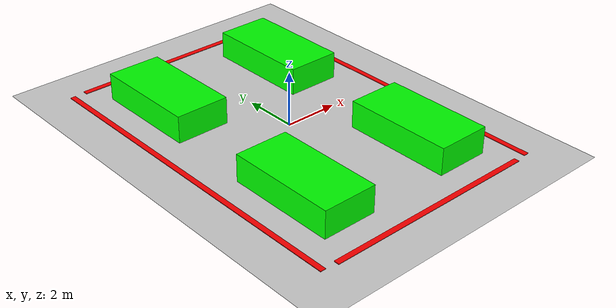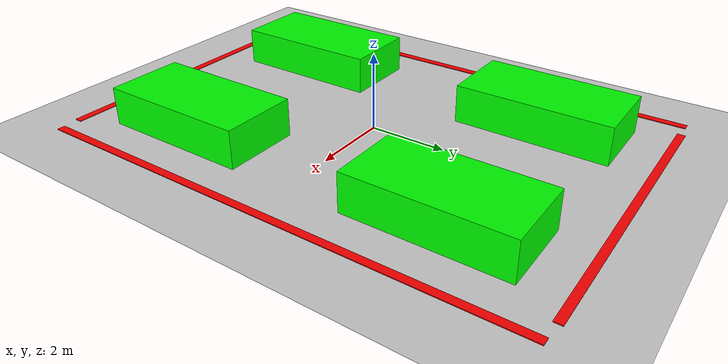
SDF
<?xml version="1.0" ?>
<sdf version="1.6">
  <world name="default">
    <include>
      <uri>model://sun</uri>
    </include>
    <include>
      <uri>model://ground_plane</uri>
    </include>

    <model name="green_box_1">
      <pose>-2.5 3.5 0.5 0 0 0</pose>
      <static>true</static>
      <link name="link">
        <collision name="collision">
          <geometry>
            <box>
              <size>2 4 1</size>
            </box>
          </geometry>
        </collision>
        <visual name="visual">
          <geometry>
            <box>
              <size>2 4 1</size>
            </box>
          </geometry>
          <material>
            <ambient>0 1 0 1</ambient>
            <diffuse>0 1 0 1</diffuse>
          </material>
        </visual>
      </link>
    </model>

    <model name="green_box_2">
      <pose>2.5 3.5 0.5 0 0 0</pose>
      <static>true</static>
      <link name="link">
        <collision name="collision">
          <geometry>
            <box>
              <size>2 4 1</size>
            </box>
          </geometry>
        </collision>
        <visual name="visual">
          <geometry>
            <box>
              <size>2 4 1</size>
            </box>
          </geometry>
          <material>
            <ambient>0 1 0 1</ambient>
            <diffuse>0 1 0 1</diffuse>
          </material>
        </visual>
      </link>
    </model>

    <model name="green_box_3">
      <pose>-2.5 -3.5 0.5 0 0 0</pose>
      <static>true</static>
      <link name="link">
        <collision name="collision">
          <geometry>
            <box>
              <size>2 4 1</size>
            </box>
          </geometry>
        </collision>
        <visual name="visual">
          <geometry>
            <box>
              <size>2 4 1</size>
            </box>
          </geometry>
          <material>
            <ambient>0 1 0 1</ambient>
            <diffuse>0 1 0 1</diffuse>
          </material>
        </visual>
      </link>
    </model>

    <model name="green_box_4">
      <pose>2.5 -3.5 0.5 0 0 0</pose>
      <static>true</static>
      <link name="link">
        <collision name="collision">
          <geometry>
            <box>
              <size>2 4 1</size>
            </box>
          </geometry>
        </collision>
        <visual name="visual">
          <geometry>
            <box>
              <size>2 4 1</size>
            </box>
          </geometry>
          <material>
            <ambient>0 1 0 1</ambient>
            <diffuse>0 1 0 1</diffuse>
          </material>
        </visual>
      </link>
    </model>

    <model name="red_boundary_top">
      <pose>0 6.5 0.01 0 0 0</pose>
      <static>true</static>
      <link name="link">
        <visual name="visual">
          <geometry>
            <box>
              <size>8 0.2 0.02</size>
            </box>
          </geometry>
          <material>
            <ambient>1 0 0 1</ambient>
            <diffuse>1 0 0 1</diffuse>
          </material>
        </visual>
      </link>
    </model>

    <model name="red_boundary_bottom">
      <pose>0 -6.5 0.01 0 0 0</pose>
      <static>true</static>
      <link name="link">
        <visual name="visual">
          <geometry>
            <box>
              <size>8 0.2 0.02</size>
            </box>
          </geometry>
          <material>
            <ambient>1 0 0 1</ambient>
            <diffuse>1 0 0 1</diffuse>
          </material>
        </visual>
      </link>
    </model>

    <model name="red_boundary_left">
      <pose>-4.5 0 0.01 0 0 0</pose>
      <static>true</static>
      <link name="link">
        <visual name="visual">
          <geometry>
            <box>
              <size>0.2 13 0.02</size>
            </box>
          </geometry>
          <material>
            <ambient>1 0 0 1</ambient>
            <diffuse>1 0 0 1</diffuse>
          </material>
        </visual>
      </link>
    </model>

    <model name="red_boundary_right">
      <pose>4.5 0 0.01 0 0 0</pose>
      <static>true</static>
      <link name="link">
        <visual name="visual">
          <geometry>
            <box>
              <size>0.2 13 0.02</size>
            </box>
          </geometry>
          <material>
            <ambient>1 0 0 1</ambient>
            <diffuse>1 0 0 1</diffuse>
          </material>
        </visual>
      </link>
    </model>

  </world>
</sdf>
